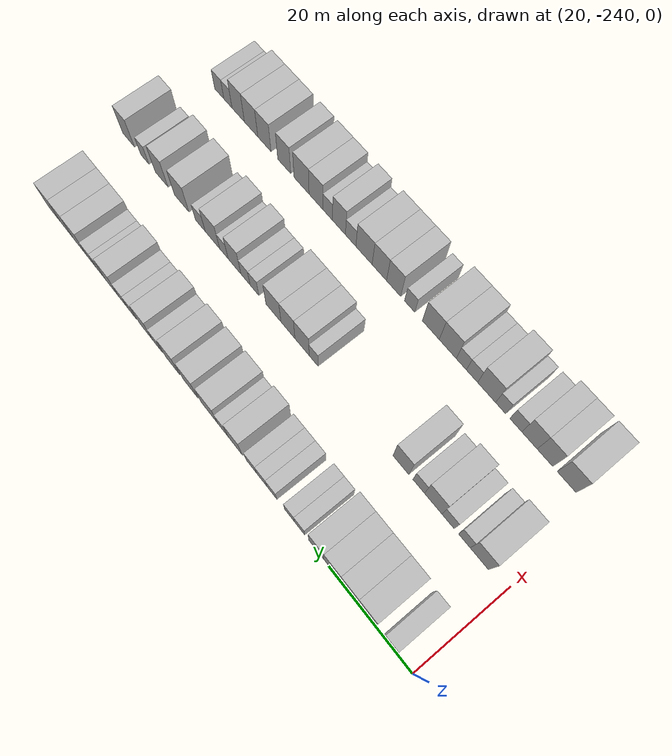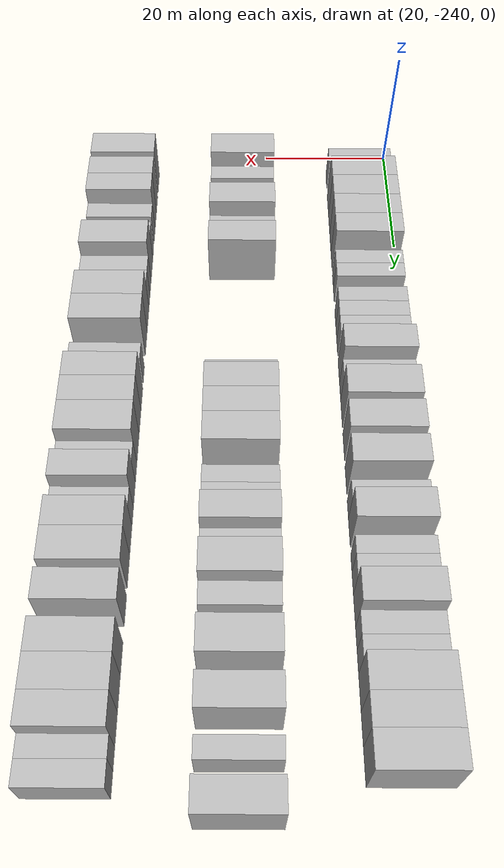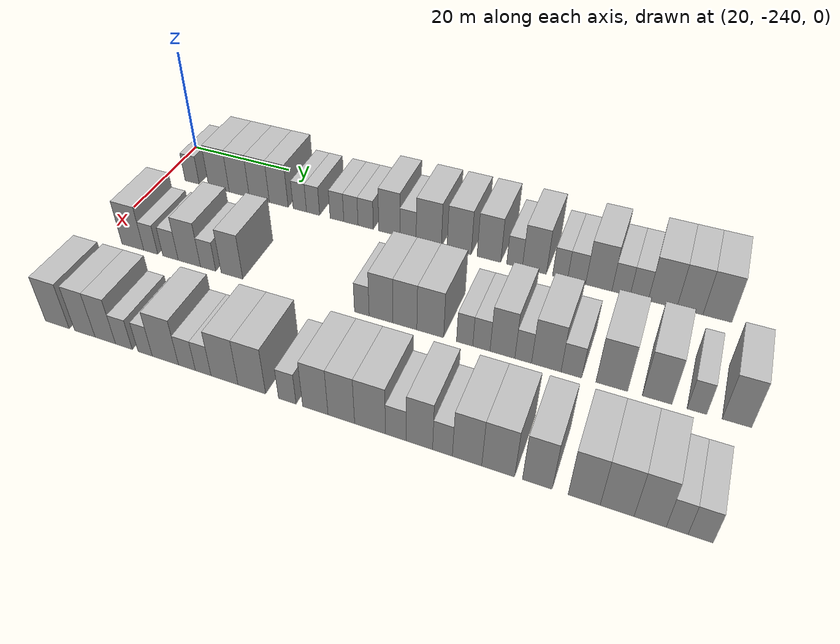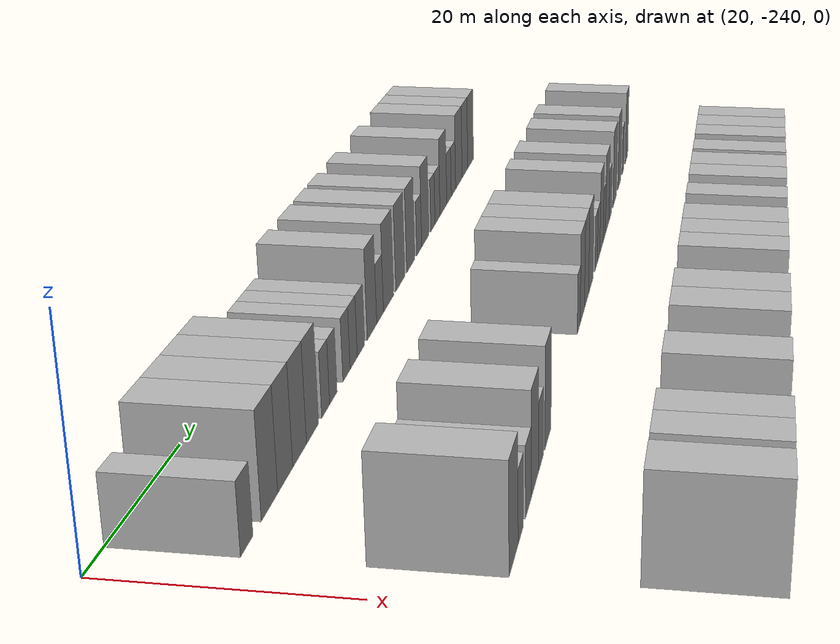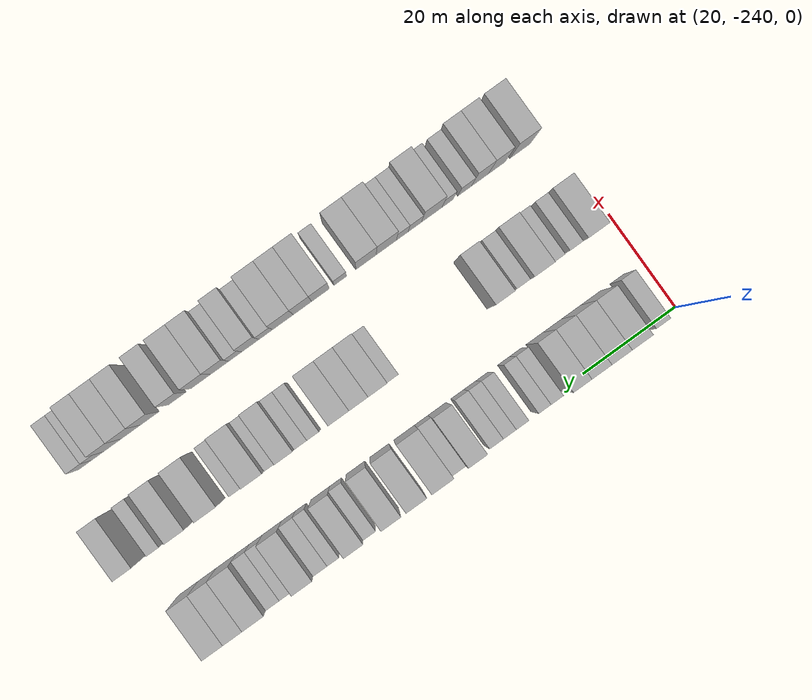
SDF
<sdf version="1.6">
 <world name="default">
  <model name="building_1">
   <static>1</static>
   <pose>25.0000 -234.5110 0 0.000000 0.000000 0.000000</pose>
   <link name="link">
    <pose>0 0 3.00 0 0 0</pose>
    <collision name="collision"><geometry><box><size>10.0000 2.9780 6.0000</size></box></geometry></collision>
    <visual name="visual">
     <cast_shadows>0</cast_shadows>
     <geometry><box><size>10.0000 2.9780 6.0000</size></box></geometry>
     <material>
      <script>
       <uri>model://HANNAS_wall/materials/scripts</uri>
       <uri>model://HANNAS_wall/materials/textures</uri>
       <name>vrc/HANNAS_wall</name>
      </script>
     </material>
    </visual>
   </link>
  </model>
  <model name="building_2">
   <static>1</static>
   <pose>25.0000 -228.8985 0 0.000000 0.000000 0.000000</pose>
   <link name="link">
    <pose>0 0 4.50 0 0 0</pose>
    <collision name="collision"><geometry><box><size>10.0000 4.2470 9.0000</size></box></geometry></collision>
    <visual name="visual">
     <cast_shadows>0</cast_shadows>
     <geometry><box><size>10.0000 4.2470 9.0000</size></box></geometry>
     <material>
      <script>
       <uri>model://HANNAS_wall/materials/scripts</uri>
       <uri>model://HANNAS_wall/materials/textures</uri>
       <name>vrc/HANNAS_wall</name>
      </script>
     </material>
    </visual>
   </link>
  </model>
  <model name="building_3">
   <static>1</static>
   <pose>25.0000 -224.7222 0 0.000000 0.000000 0.000000</pose>
   <link name="link">
    <pose>0 0 4.50 0 0 0</pose>
    <collision name="collision"><geometry><box><size>10.0000 4.1056 9.0000</size></box></geometry></collision>
    <visual name="visual">
     <cast_shadows>0</cast_shadows>
     <geometry><box><size>10.0000 4.1056 9.0000</size></box></geometry>
     <material>
      <script>
       <uri>model://HANNAS_wall/materials/scripts</uri>
       <uri>model://HANNAS_wall/materials/textures</uri>
       <name>vrc/HANNAS_wall</name>
      </script>
     </material>
    </visual>
   </link>
  </model>
  <model name="building_4">
   <static>1</static>
   <pose>25.0000 -220.6617 0 0.000000 0.000000 0.000000</pose>
   <link name="link">
    <pose>0 0 4.50 0 0 0</pose>
    <collision name="collision"><geometry><box><size>10.0000 4.0155 9.0000</size></box></geometry></collision>
    <visual name="visual">
     <cast_shadows>0</cast_shadows>
     <geometry><box><size>10.0000 4.0155 9.0000</size></box></geometry>
     <material>
      <script>
       <uri>model://HANNAS_wall/materials/scripts</uri>
       <uri>model://HANNAS_wall/materials/textures</uri>
       <name>vrc/HANNAS_wall</name>
      </script>
     </material>
    </visual>
   </link>
  </model>
  <model name="building_5">
   <static>1</static>
   <pose>25.0000 -216.7929 0 0.000000 0.000000 0.000000</pose>
   <link name="link">
    <pose>0 0 4.50 0 0 0</pose>
    <collision name="collision"><geometry><box><size>10.0000 3.7220 9.0000</size></box></geometry></collision>
    <visual name="visual">
     <cast_shadows>0</cast_shadows>
     <geometry><box><size>10.0000 3.7220 9.0000</size></box></geometry>
     <material>
      <script>
       <uri>model://HANNAS_wall/materials/scripts</uri>
       <uri>model://HANNAS_wall/materials/textures</uri>
       <name>vrc/HANNAS_wall</name>
      </script>
     </material>
    </visual>
   </link>
  </model>
  <model name="building_6">
   <static>1</static>
   <pose>25.0000 -212.6396 0 0.000000 0.000000 0.000000</pose>
   <link name="link">
    <pose>0 0 3.00 0 0 0</pose>
    <collision name="collision"><geometry><box><size>10.0000 2.5845 6.0000</size></box></geometry></collision>
    <visual name="visual">
     <cast_shadows>0</cast_shadows>
     <geometry><box><size>10.0000 2.5845 6.0000</size></box></geometry>
     <material>
      <script>
       <uri>model://HANNAS_wall/materials/scripts</uri>
       <uri>model://HANNAS_wall/materials/textures</uri>
       <name>vrc/HANNAS_wall</name>
      </script>
     </material>
    </visual>
   </link>
  </model>
  <model name="building_7">
   <static>1</static>
   <pose>25.0000 -210.0761 0 0.000000 0.000000 0.000000</pose>
   <link name="link">
    <pose>0 0 3.00 0 0 0</pose>
    <collision name="collision"><geometry><box><size>10.0000 2.5425 6.0000</size></box></geometry></collision>
    <visual name="visual">
     <cast_shadows>0</cast_shadows>
     <geometry><box><size>10.0000 2.5425 6.0000</size></box></geometry>
     <material>
      <script>
       <uri>model://HANNAS_wall/materials/scripts</uri>
       <uri>model://HANNAS_wall/materials/textures</uri>
       <name>vrc/HANNAS_wall</name>
      </script>
     </material>
    </visual>
   </link>
  </model>
  <model name="building_8">
   <static>1</static>
   <pose>25.0000 -205.5048 0 0.000000 0.000000 0.000000</pose>
   <link name="link">
    <pose>0 0 3.00 0 0 0</pose>
    <collision name="collision"><geometry><box><size>10.0000 2.6002 6.0000</size></box></geometry></collision>
    <visual name="visual">
     <cast_shadows>0</cast_shadows>
     <geometry><box><size>10.0000 2.6002 6.0000</size></box></geometry>
     <material>
      <script>
       <uri>model://HANNAS_wall/materials/scripts</uri>
       <uri>model://HANNAS_wall/materials/textures</uri>
       <name>vrc/HANNAS_wall</name>
      </script>
     </material>
    </visual>
   </link>
  </model>
  <model name="building_9">
   <static>1</static>
   <pose>25.0000 -202.8734 0 0.000000 0.000000 0.000000</pose>
   <link name="link">
    <pose>0 0 3.00 0 0 0</pose>
    <collision name="collision"><geometry><box><size>10.0000 2.6625 6.0000</size></box></geometry></collision>
    <visual name="visual">
     <cast_shadows>0</cast_shadows>
     <geometry><box><size>10.0000 2.6625 6.0000</size></box></geometry>
     <material>
      <script>
       <uri>model://HANNAS_wall/materials/scripts</uri>
       <uri>model://HANNAS_wall/materials/textures</uri>
       <name>vrc/HANNAS_wall</name>
      </script>
     </material>
    </visual>
   </link>
  </model>
  <model name="building_10">
   <static>1</static>
   <pose>25.0000 -200.1235 0 0.000000 0.000000 0.000000</pose>
   <link name="link">
    <pose>0 0 3.00 0 0 0</pose>
    <collision name="collision"><geometry><box><size>10.0000 2.8374 6.0000</size></box></geometry></collision>
    <visual name="visual">
     <cast_shadows>0</cast_shadows>
     <geometry><box><size>10.0000 2.8374 6.0000</size></box></geometry>
     <material>
      <script>
       <uri>model://HANNAS_wall/materials/scripts</uri>
       <uri>model://HANNAS_wall/materials/textures</uri>
       <name>vrc/HANNAS_wall</name>
      </script>
     </material>
    </visual>
   </link>
  </model>
  <model name="building_11">
   <static>1</static>
   <pose>25.0000 -195.7681 0 0.000000 0.000000 0.000000</pose>
   <link name="link">
    <pose>0 0 4.50 0 0 0</pose>
    <collision name="collision"><geometry><box><size>10.0000 3.8734 9.0000</size></box></geometry></collision>
    <visual name="visual">
     <cast_shadows>0</cast_shadows>
     <geometry><box><size>10.0000 3.8734 9.0000</size></box></geometry>
     <material>
      <script>
       <uri>model://HANNAS_wall/materials/scripts</uri>
       <uri>model://HANNAS_wall/materials/textures</uri>
       <name>vrc/HANNAS_wall</name>
      </script>
     </material>
    </visual>
   </link>
  </model>
  <model name="building_12">
   <static>1</static>
   <pose>25.0000 -192.3877 0 0.000000 0.000000 0.000000</pose>
   <link name="link">
    <pose>0 0 3.00 0 0 0</pose>
    <collision name="collision"><geometry><box><size>10.0000 2.8874 6.0000</size></box></geometry></collision>
    <visual name="visual">
     <cast_shadows>0</cast_shadows>
     <geometry><box><size>10.0000 2.8874 6.0000</size></box></geometry>
     <material>
      <script>
       <uri>model://HANNAS_wall/materials/scripts</uri>
       <uri>model://HANNAS_wall/materials/textures</uri>
       <name>vrc/HANNAS_wall</name>
      </script>
     </material>
    </visual>
   </link>
  </model>
  <model name="building_13">
   <static>1</static>
   <pose>25.0000 -188.7021 0 0.000000 0.000000 0.000000</pose>
   <link name="link">
    <pose>0 0 4.50 0 0 0</pose>
    <collision name="collision"><geometry><box><size>10.0000 4.4838 9.0000</size></box></geometry></collision>
    <visual name="visual">
     <cast_shadows>0</cast_shadows>
     <geometry><box><size>10.0000 4.4838 9.0000</size></box></geometry>
     <material>
      <script>
       <uri>model://HANNAS_wall/materials/scripts</uri>
       <uri>model://HANNAS_wall/materials/textures</uri>
       <name>vrc/HANNAS_wall</name>
      </script>
     </material>
    </visual>
   </link>
  </model>
  <model name="building_14">
   <static>1</static>
   <pose>25.0000 -183.3617 0 0.000000 0.000000 0.000000</pose>
   <link name="link">
    <pose>0 0 4.50 0 0 0</pose>
    <collision name="collision"><geometry><box><size>10.0000 4.1970 9.0000</size></box></geometry></collision>
    <visual name="visual">
     <cast_shadows>0</cast_shadows>
     <geometry><box><size>10.0000 4.1970 9.0000</size></box></geometry>
     <material>
      <script>
       <uri>model://HANNAS_wall/materials/scripts</uri>
       <uri>model://HANNAS_wall/materials/textures</uri>
       <name>vrc/HANNAS_wall</name>
      </script>
     </material>
    </visual>
   </link>
  </model>
  <model name="building_15">
   <static>1</static>
   <pose>25.0000 -178.2500 0 0.000000 0.000000 0.000000</pose>
   <link name="link">
    <pose>0 0 4.50 0 0 0</pose>
    <collision name="collision"><geometry><box><size>10.0000 4.0265 9.0000</size></box></geometry></collision>
    <visual name="visual">
     <cast_shadows>0</cast_shadows>
     <geometry><box><size>10.0000 4.0265 9.0000</size></box></geometry>
     <material>
      <script>
       <uri>model://HANNAS_wall/materials/scripts</uri>
       <uri>model://HANNAS_wall/materials/textures</uri>
       <name>vrc/HANNAS_wall</name>
      </script>
     </material>
    </visual>
   </link>
  </model>
  <model name="building_16">
   <static>1</static>
   <pose>25.0000 -173.9341 0 0.000000 0.000000 0.000000</pose>
   <link name="link">
    <pose>0 0 3.00 0 0 0</pose>
    <collision name="collision"><geometry><box><size>10.0000 2.6052 6.0000</size></box></geometry></collision>
    <visual name="visual">
     <cast_shadows>0</cast_shadows>
     <geometry><box><size>10.0000 2.6052 6.0000</size></box></geometry>
     <material>
      <script>
       <uri>model://HANNAS_wall/materials/scripts</uri>
       <uri>model://HANNAS_wall/materials/textures</uri>
       <name>vrc/HANNAS_wall</name>
      </script>
     </material>
    </visual>
   </link>
  </model>
  <model name="building_17">
   <static>1</static>
   <pose>25.0000 -170.6508 0 0.000000 0.000000 0.000000</pose>
   <link name="link">
    <pose>0 0 4.50 0 0 0</pose>
    <collision name="collision"><geometry><box><size>10.0000 3.9614 9.0000</size></box></geometry></collision>
    <visual name="visual">
     <cast_shadows>0</cast_shadows>
     <geometry><box><size>10.0000 3.9614 9.0000</size></box></geometry>
     <material>
      <script>
       <uri>model://HANNAS_wall/materials/scripts</uri>
       <uri>model://HANNAS_wall/materials/textures</uri>
       <name>vrc/HANNAS_wall</name>
      </script>
     </material>
    </visual>
   </link>
  </model>
  <model name="building_18">
   <static>1</static>
   <pose>25.0000 -166.4520 0 0.000000 0.000000 0.000000</pose>
   <link name="link">
    <pose>0 0 3.00 0 0 0</pose>
    <collision name="collision"><geometry><box><size>10.0000 2.4362 6.0000</size></box></geometry></collision>
    <visual name="visual">
     <cast_shadows>0</cast_shadows>
     <geometry><box><size>10.0000 2.4362 6.0000</size></box></geometry>
     <material>
      <script>
       <uri>model://HANNAS_wall/materials/scripts</uri>
       <uri>model://HANNAS_wall/materials/textures</uri>
       <name>vrc/HANNAS_wall</name>
      </script>
     </material>
    </visual>
   </link>
  </model>
  <model name="building_19">
   <static>1</static>
   <pose>25.0000 -163.7899 0 0.000000 0.000000 0.000000</pose>
   <link name="link">
    <pose>0 0 3.00 0 0 0</pose>
    <collision name="collision"><geometry><box><size>10.0000 2.8879 6.0000</size></box></geometry></collision>
    <visual name="visual">
     <cast_shadows>0</cast_shadows>
     <geometry><box><size>10.0000 2.8879 6.0000</size></box></geometry>
     <material>
      <script>
       <uri>model://HANNAS_wall/materials/scripts</uri>
       <uri>model://HANNAS_wall/materials/textures</uri>
       <name>vrc/HANNAS_wall</name>
      </script>
     </material>
    </visual>
   </link>
  </model>
  <model name="building_20">
   <static>1</static>
   <pose>25.0000 -160.2776 0 0.000000 0.000000 0.000000</pose>
   <link name="link">
    <pose>0 0 4.50 0 0 0</pose>
    <collision name="collision"><geometry><box><size>10.0000 4.1365 9.0000</size></box></geometry></collision>
    <visual name="visual">
     <cast_shadows>0</cast_shadows>
     <geometry><box><size>10.0000 4.1365 9.0000</size></box></geometry>
     <material>
      <script>
       <uri>model://HANNAS_wall/materials/scripts</uri>
       <uri>model://HANNAS_wall/materials/textures</uri>
       <name>vrc/HANNAS_wall</name>
      </script>
     </material>
    </visual>
   </link>
  </model>
  <model name="building_21">
   <static>1</static>
   <pose>25.0000 -156.7975 0 0.000000 0.000000 0.000000</pose>
   <link name="link">
    <pose>0 0 3.00 0 0 0</pose>
    <collision name="collision"><geometry><box><size>10.0000 2.8238 6.0000</size></box></geometry></collision>
    <visual name="visual">
     <cast_shadows>0</cast_shadows>
     <geometry><box><size>10.0000 2.8238 6.0000</size></box></geometry>
     <material>
      <script>
       <uri>model://HANNAS_wall/materials/scripts</uri>
       <uri>model://HANNAS_wall/materials/textures</uri>
       <name>vrc/HANNAS_wall</name>
      </script>
     </material>
    </visual>
   </link>
  </model>
  <model name="building_22">
   <static>1</static>
   <pose>25.0000 -153.9913 0 0.000000 0.000000 0.000000</pose>
   <link name="link">
    <pose>0 0 3.00 0 0 0</pose>
    <collision name="collision"><geometry><box><size>10.0000 2.7885 6.0000</size></box></geometry></collision>
    <visual name="visual">
     <cast_shadows>0</cast_shadows>
     <geometry><box><size>10.0000 2.7885 6.0000</size></box></geometry>
     <material>
      <script>
       <uri>model://HANNAS_wall/materials/scripts</uri>
       <uri>model://HANNAS_wall/materials/textures</uri>
       <name>vrc/HANNAS_wall</name>
      </script>
     </material>
    </visual>
   </link>
  </model>
  <model name="building_23">
   <static>1</static>
   <pose>25.0000 -150.4368 0 0.000000 0.000000 0.000000</pose>
   <link name="link">
    <pose>0 0 4.50 0 0 0</pose>
    <collision name="collision"><geometry><box><size>10.0000 4.3205 9.0000</size></box></geometry></collision>
    <visual name="visual">
     <cast_shadows>0</cast_shadows>
     <geometry><box><size>10.0000 4.3205 9.0000</size></box></geometry>
     <material>
      <script>
       <uri>model://HANNAS_wall/materials/scripts</uri>
       <uri>model://HANNAS_wall/materials/textures</uri>
       <name>vrc/HANNAS_wall</name>
      </script>
     </material>
    </visual>
   </link>
  </model>
  <model name="building_24">
   <static>1</static>
   <pose>25.0000 -146.3372 0 0.000000 0.000000 0.000000</pose>
   <link name="link">
    <pose>0 0 4.50 0 0 0</pose>
    <collision name="collision"><geometry><box><size>10.0000 3.8786 9.0000</size></box></geometry></collision>
    <visual name="visual">
     <cast_shadows>0</cast_shadows>
     <geometry><box><size>10.0000 3.8786 9.0000</size></box></geometry>
     <material>
      <script>
       <uri>model://HANNAS_wall/materials/scripts</uri>
       <uri>model://HANNAS_wall/materials/textures</uri>
       <name>vrc/HANNAS_wall</name>
      </script>
     </material>
    </visual>
   </link>
  </model>
  <model name="building_25">
   <static>1</static>
   <pose>25.0000 -142.2803 0 0.000000 0.000000 0.000000</pose>
   <link name="link">
    <pose>0 0 4.50 0 0 0</pose>
    <collision name="collision"><geometry><box><size>10.0000 4.2353 9.0000</size></box></geometry></collision>
    <visual name="visual">
     <cast_shadows>0</cast_shadows>
     <geometry><box><size>10.0000 4.2353 9.0000</size></box></geometry>
     <material>
      <script>
       <uri>model://HANNAS_wall/materials/scripts</uri>
       <uri>model://HANNAS_wall/materials/textures</uri>
       <name>vrc/HANNAS_wall</name>
      </script>
     </material>
    </visual>
   </link>
  </model>
  <model name="building_117">
   <static>1</static>
   <pose>44.0000 -233.8512 0 0.000000 0.000000 0.000000</pose>
   <link name="link">
    <pose>0 0 4.50 0 0 0</pose>
    <collision name="collision"><geometry><box><size>10.0000 4.2975 9.0000</size></box></geometry></collision>
    <visual name="visual">
     <cast_shadows>0</cast_shadows>
     <geometry><box><size>10.0000 4.2975 9.0000</size></box></geometry>
     <material>
      <script>
       <uri>model://HANNAS_wall/materials/scripts</uri>
       <uri>model://HANNAS_wall/materials/textures</uri>
       <name>vrc/HANNAS_wall</name>
      </script>
     </material>
    </visual>
   </link>
  </model>
  <model name="building_118">
   <static>1</static>
   <pose>44.0000 -230.3471 0 0.000000 0.000000 0.000000</pose>
   <link name="link">
    <pose>0 0 3.00 0 0 0</pose>
    <collision name="collision"><geometry><box><size>10.0000 2.7107 6.0000</size></box></geometry></collision>
    <visual name="visual">
     <cast_shadows>0</cast_shadows>
     <geometry><box><size>10.0000 2.7107 6.0000</size></box></geometry>
     <material>
      <script>
       <uri>model://HANNAS_wall/materials/scripts</uri>
       <uri>model://HANNAS_wall/materials/textures</uri>
       <name>vrc/HANNAS_wall</name>
      </script>
     </material>
    </visual>
   </link>
  </model>
  <model name="building_119">
   <static>1</static>
   <pose>44.0000 -226.5176 0 0.000000 0.000000 0.000000</pose>
   <link name="link">
    <pose>0 0 3.00 0 0 0</pose>
    <collision name="collision"><geometry><box><size>10.0000 2.9483 6.0000</size></box></geometry></collision>
    <visual name="visual">
     <cast_shadows>0</cast_shadows>
     <geometry><box><size>10.0000 2.9483 6.0000</size></box></geometry>
     <material>
      <script>
       <uri>model://HANNAS_wall/materials/scripts</uri>
       <uri>model://HANNAS_wall/materials/textures</uri>
       <name>vrc/HANNAS_wall</name>
      </script>
     </material>
    </visual>
   </link>
  </model>
  <model name="building_120">
   <static>1</static>
   <pose>44.0000 -222.9465 0 0.000000 0.000000 0.000000</pose>
   <link name="link">
    <pose>0 0 4.50 0 0 0</pose>
    <collision name="collision"><geometry><box><size>10.0000 4.1940 9.0000</size></box></geometry></collision>
    <visual name="visual">
     <cast_shadows>0</cast_shadows>
     <geometry><box><size>10.0000 4.1940 9.0000</size></box></geometry>
     <material>
      <script>
       <uri>model://HANNAS_wall/materials/scripts</uri>
       <uri>model://HANNAS_wall/materials/textures</uri>
       <name>vrc/HANNAS_wall</name>
      </script>
     </material>
    </visual>
   </link>
  </model>
  <model name="building_121">
   <static>1</static>
   <pose>44.0000 -219.4263 0 0.000000 0.000000 0.000000</pose>
   <link name="link">
    <pose>0 0 3.00 0 0 0</pose>
    <collision name="collision"><geometry><box><size>10.0000 2.8464 6.0000</size></box></geometry></collision>
    <visual name="visual">
     <cast_shadows>0</cast_shadows>
     <geometry><box><size>10.0000 2.8464 6.0000</size></box></geometry>
     <material>
      <script>
       <uri>model://HANNAS_wall/materials/scripts</uri>
       <uri>model://HANNAS_wall/materials/textures</uri>
       <name>vrc/HANNAS_wall</name>
      </script>
     </material>
    </visual>
   </link>
  </model>
  <model name="building_122">
   <static>1</static>
   <pose>44.0000 -215.0389 0 0.000000 0.000000 0.000000</pose>
   <link name="link">
    <pose>0 0 4.50 0 0 0</pose>
    <collision name="collision"><geometry><box><size>10.0000 3.9283 9.0000</size></box></geometry></collision>
    <visual name="visual">
     <cast_shadows>0</cast_shadows>
     <geometry><box><size>10.0000 3.9283 9.0000</size></box></geometry>
     <material>
      <script>
       <uri>model://HANNAS_wall/materials/scripts</uri>
       <uri>model://HANNAS_wall/materials/textures</uri>
       <name>vrc/HANNAS_wall</name>
      </script>
     </material>
    </visual>
   </link>
  </model>
  <model name="building_123">
   <static>1</static>
   <pose>44.0000 -192.4427 0 0.000000 0.000000 0.000000</pose>
   <link name="link">
    <pose>0 0 3.00 0 0 0</pose>
    <collision name="collision"><geometry><box><size>10.0000 2.4214 6.0000</size></box></geometry></collision>
    <visual name="visual">
     <cast_shadows>0</cast_shadows>
     <geometry><box><size>10.0000 2.4214 6.0000</size></box></geometry>
     <material>
      <script>
       <uri>model://HANNAS_wall/materials/scripts</uri>
       <uri>model://HANNAS_wall/materials/textures</uri>
       <name>vrc/HANNAS_wall</name>
      </script>
     </material>
    </visual>
   </link>
  </model>
  <model name="building_124">
   <static>1</static>
   <pose>44.0000 -189.2948 0 0.000000 0.000000 0.000000</pose>
   <link name="link">
    <pose>0 0 4.50 0 0 0</pose>
    <collision name="collision"><geometry><box><size>10.0000 3.8745 9.0000</size></box></geometry></collision>
    <visual name="visual">
     <cast_shadows>0</cast_shadows>
     <geometry><box><size>10.0000 3.8745 9.0000</size></box></geometry>
     <material>
      <script>
       <uri>model://HANNAS_wall/materials/scripts</uri>
       <uri>model://HANNAS_wall/materials/textures</uri>
       <name>vrc/HANNAS_wall</name>
      </script>
     </material>
    </visual>
   </link>
  </model>
  <model name="building_125">
   <static>1</static>
   <pose>44.0000 -185.4379 0 0.000000 0.000000 0.000000</pose>
   <link name="link">
    <pose>0 0 4.50 0 0 0</pose>
    <collision name="collision"><geometry><box><size>10.0000 3.8393 9.0000</size></box></geometry></collision>
    <visual name="visual">
     <cast_shadows>0</cast_shadows>
     <geometry><box><size>10.0000 3.8393 9.0000</size></box></geometry>
     <material>
      <script>
       <uri>model://HANNAS_wall/materials/scripts</uri>
       <uri>model://HANNAS_wall/materials/textures</uri>
       <name>vrc/HANNAS_wall</name>
      </script>
     </material>
    </visual>
   </link>
  </model>
  <model name="building_126">
   <static>1</static>
   <pose>44.0000 -181.4023 0 0.000000 0.000000 0.000000</pose>
   <link name="link">
    <pose>0 0 4.50 0 0 0</pose>
    <collision name="collision"><geometry><box><size>10.0000 4.2319 9.0000</size></box></geometry></collision>
    <visual name="visual">
     <cast_shadows>0</cast_shadows>
     <geometry><box><size>10.0000 4.2319 9.0000</size></box></geometry>
     <material>
      <script>
       <uri>model://HANNAS_wall/materials/scripts</uri>
       <uri>model://HANNAS_wall/materials/textures</uri>
       <name>vrc/HANNAS_wall</name>
      </script>
     </material>
    </visual>
   </link>
  </model>
  <model name="building_127">
   <static>1</static>
   <pose>44.0000 -176.0356 0 0.000000 0.000000 0.000000</pose>
   <link name="link">
    <pose>0 0 3.00 0 0 0</pose>
    <collision name="collision"><geometry><box><size>10.0000 2.5014 6.0000</size></box></geometry></collision>
    <visual name="visual">
     <cast_shadows>0</cast_shadows>
     <geometry><box><size>10.0000 2.5014 6.0000</size></box></geometry>
     <material>
      <script>
       <uri>model://HANNAS_wall/materials/scripts</uri>
       <uri>model://HANNAS_wall/materials/textures</uri>
       <name>vrc/HANNAS_wall</name>
      </script>
     </material>
    </visual>
   </link>
  </model>
  <model name="building_128">
   <static>1</static>
   <pose>44.0000 -173.4767 0 0.000000 0.000000 0.000000</pose>
   <link name="link">
    <pose>0 0 3.00 0 0 0</pose>
    <collision name="collision"><geometry><box><size>10.0000 2.6164 6.0000</size></box></geometry></collision>
    <visual name="visual">
     <cast_shadows>0</cast_shadows>
     <geometry><box><size>10.0000 2.6164 6.0000</size></box></geometry>
     <material>
      <script>
       <uri>model://HANNAS_wall/materials/scripts</uri>
       <uri>model://HANNAS_wall/materials/textures</uri>
       <name>vrc/HANNAS_wall</name>
      </script>
     </material>
    </visual>
   </link>
  </model>
  <model name="building_129">
   <static>1</static>
   <pose>44.0000 -170.3108 0 0.000000 0.000000 0.000000</pose>
   <link name="link">
    <pose>0 0 4.50 0 0 0</pose>
    <collision name="collision"><geometry><box><size>10.0000 3.7154 9.0000</size></box></geometry></collision>
    <visual name="visual">
     <cast_shadows>0</cast_shadows>
     <geometry><box><size>10.0000 3.7154 9.0000</size></box></geometry>
     <material>
      <script>
       <uri>model://HANNAS_wall/materials/scripts</uri>
       <uri>model://HANNAS_wall/materials/textures</uri>
       <name>vrc/HANNAS_wall</name>
      </script>
     </material>
    </visual>
   </link>
  </model>
  <model name="building_130">
   <static>1</static>
   <pose>44.0000 -167.2194 0 0.000000 0.000000 0.000000</pose>
   <link name="link">
    <pose>0 0 3.00 0 0 0</pose>
    <collision name="collision"><geometry><box><size>10.0000 2.4674 6.0000</size></box></geometry></collision>
    <visual name="visual">
     <cast_shadows>0</cast_shadows>
     <geometry><box><size>10.0000 2.4674 6.0000</size></box></geometry>
     <material>
      <script>
       <uri>model://HANNAS_wall/materials/scripts</uri>
       <uri>model://HANNAS_wall/materials/textures</uri>
       <name>vrc/HANNAS_wall</name>
      </script>
     </material>
    </visual>
   </link>
  </model>
  <model name="building_131">
   <static>1</static>
   <pose>44.0000 -163.8393 0 0.000000 0.000000 0.000000</pose>
   <link name="link">
    <pose>0 0 4.50 0 0 0</pose>
    <collision name="collision"><geometry><box><size>10.0000 4.2929 9.0000</size></box></geometry></collision>
    <visual name="visual">
     <cast_shadows>0</cast_shadows>
     <geometry><box><size>10.0000 4.2929 9.0000</size></box></geometry>
     <material>
      <script>
       <uri>model://HANNAS_wall/materials/scripts</uri>
       <uri>model://HANNAS_wall/materials/textures</uri>
       <name>vrc/HANNAS_wall</name>
      </script>
     </material>
    </visual>
   </link>
  </model>
  <model name="building_132">
   <static>1</static>
   <pose>44.0000 -160.2126 0 0.000000 0.000000 0.000000</pose>
   <link name="link">
    <pose>0 0 3.00 0 0 0</pose>
    <collision name="collision"><geometry><box><size>10.0000 2.9605 6.0000</size></box></geometry></collision>
    <visual name="visual">
     <cast_shadows>0</cast_shadows>
     <geometry><box><size>10.0000 2.9605 6.0000</size></box></geometry>
     <material>
      <script>
       <uri>model://HANNAS_wall/materials/scripts</uri>
       <uri>model://HANNAS_wall/materials/textures</uri>
       <name>vrc/HANNAS_wall</name>
      </script>
     </material>
    </visual>
   </link>
  </model>
  <model name="building_133">
   <static>1</static>
   <pose>44.0000 -154.5204 0 0.000000 0.000000 0.000000</pose>
   <link name="link">
    <pose>0 0 4.50 0 0 0</pose>
    <collision name="collision"><geometry><box><size>10.0000 4.4240 9.0000</size></box></geometry></collision>
    <visual name="visual">
     <cast_shadows>0</cast_shadows>
     <geometry><box><size>10.0000 4.4240 9.0000</size></box></geometry>
     <material>
      <script>
       <uri>model://HANNAS_wall/materials/scripts</uri>
       <uri>model://HANNAS_wall/materials/textures</uri>
       <name>vrc/HANNAS_wall</name>
      </script>
     </material>
    </visual>
   </link>
  </model>
  <model name="building_134">
   <static>1</static>
   <pose>44.0000 -148.2998 0 0.000000 0.000000 0.000000</pose>
   <link name="link">
    <pose>0 0 4.50 0 0 0</pose>
    <collision name="collision"><geometry><box><size>10.0000 4.0170 9.0000</size></box></geometry></collision>
    <visual name="visual">
     <cast_shadows>0</cast_shadows>
     <geometry><box><size>10.0000 4.0170 9.0000</size></box></geometry>
     <material>
      <script>
       <uri>model://HANNAS_wall/materials/scripts</uri>
       <uri>model://HANNAS_wall/materials/textures</uri>
       <name>vrc/HANNAS_wall</name>
      </script>
     </material>
    </visual>
   </link>
  </model>
  <model name="building_135">
   <static>1</static>
   <pose>44.0000 -142.9965 0 0.000000 0.000000 0.000000</pose>
   <link name="link">
    <pose>0 0 3.00 0 0 0</pose>
    <collision name="collision"><geometry><box><size>10.0000 2.5897 6.0000</size></box></geometry></collision>
    <visual name="visual">
     <cast_shadows>0</cast_shadows>
     <geometry><box><size>10.0000 2.5897 6.0000</size></box></geometry>
     <material>
      <script>
       <uri>model://HANNAS_wall/materials/scripts</uri>
       <uri>model://HANNAS_wall/materials/textures</uri>
       <name>vrc/HANNAS_wall</name>
      </script>
     </material>
    </visual>
   </link>
  </model>
  <model name="building_136">
   <static>1</static>
   <pose>44.0000 -137.8077 0 0.000000 0.000000 0.000000</pose>
   <link name="link">
    <pose>0 0 4.50 0 0 0</pose>
    <collision name="collision"><geometry><box><size>10.0000 3.7879 9.0000</size></box></geometry></collision>
    <visual name="visual">
     <cast_shadows>0</cast_shadows>
     <geometry><box><size>10.0000 3.7879 9.0000</size></box></geometry>
     <material>
      <script>
       <uri>model://HANNAS_wall/materials/scripts</uri>
       <uri>model://HANNAS_wall/materials/textures</uri>
       <name>vrc/HANNAS_wall</name>
      </script>
     </material>
    </visual>
   </link>
  </model>
  <model name="building_233">
   <static>1</static>
   <pose>63.0000 -233.8244 0 0.000000 0.000000 0.000000</pose>
   <link name="link">
    <pose>0 0 4.50 0 0 0</pose>
    <collision name="collision"><geometry><box><size>10.0000 4.3513 9.0000</size></box></geometry></collision>
    <visual name="visual">
     <cast_shadows>0</cast_shadows>
     <geometry><box><size>10.0000 4.3513 9.0000</size></box></geometry>
     <material>
      <script>
       <uri>model://HANNAS_wall/materials/scripts</uri>
       <uri>model://HANNAS_wall/materials/textures</uri>
       <name>vrc/HANNAS_wall</name>
      </script>
     </material>
    </visual>
   </link>
  </model>
  <model name="building_234">
   <static>1</static>
   <pose>63.0000 -228.8099 0 0.000000 0.000000 0.000000</pose>
   <link name="link">
    <pose>0 0 4.50 0 0 0</pose>
    <collision name="collision"><geometry><box><size>10.0000 3.6776 9.0000</size></box></geometry></collision>
    <visual name="visual">
     <cast_shadows>0</cast_shadows>
     <geometry><box><size>10.0000 3.6776 9.0000</size></box></geometry>
     <material>
      <script>
       <uri>model://HANNAS_wall/materials/scripts</uri>
       <uri>model://HANNAS_wall/materials/textures</uri>
       <name>vrc/HANNAS_wall</name>
      </script>
     </material>
    </visual>
   </link>
  </model>
  <model name="building_235">
   <static>1</static>
   <pose>63.0000 -225.1608 0 0.000000 0.000000 0.000000</pose>
   <link name="link">
    <pose>0 0 4.50 0 0 0</pose>
    <collision name="collision"><geometry><box><size>10.0000 3.6207 9.0000</size></box></geometry></collision>
    <visual name="visual">
     <cast_shadows>0</cast_shadows>
     <geometry><box><size>10.0000 3.6207 9.0000</size></box></geometry>
     <material>
      <script>
       <uri>model://HANNAS_wall/materials/scripts</uri>
       <uri>model://HANNAS_wall/materials/textures</uri>
       <name>vrc/HANNAS_wall</name>
      </script>
     </material>
    </visual>
   </link>
  </model>
  <model name="building_236">
   <static>1</static>
   <pose>63.0000 -221.8966 0 0.000000 0.000000 0.000000</pose>
   <link name="link">
    <pose>0 0 3.00 0 0 0</pose>
    <collision name="collision"><geometry><box><size>10.0000 2.9077 6.0000</size></box></geometry></collision>
    <visual name="visual">
     <cast_shadows>0</cast_shadows>
     <geometry><box><size>10.0000 2.9077 6.0000</size></box></geometry>
     <material>
      <script>
       <uri>model://HANNAS_wall/materials/scripts</uri>
       <uri>model://HANNAS_wall/materials/textures</uri>
       <name>vrc/HANNAS_wall</name>
      </script>
     </material>
    </visual>
   </link>
  </model>
  <model name="building_237">
   <static>1</static>
   <pose>63.0000 -218.2198 0 0.000000 0.000000 0.000000</pose>
   <link name="link">
    <pose>0 0 3.00 0 0 0</pose>
    <collision name="collision"><geometry><box><size>10.0000 2.4458 6.0000</size></box></geometry></collision>
    <visual name="visual">
     <cast_shadows>0</cast_shadows>
     <geometry><box><size>10.0000 2.4458 6.0000</size></box></geometry>
     <material>
      <script>
       <uri>model://HANNAS_wall/materials/scripts</uri>
       <uri>model://HANNAS_wall/materials/textures</uri>
       <name>vrc/HANNAS_wall</name>
      </script>
     </material>
    </visual>
   </link>
  </model>
  <model name="building_238">
   <static>1</static>
   <pose>63.0000 -214.7890 0 0.000000 0.000000 0.000000</pose>
   <link name="link">
    <pose>0 0 4.50 0 0 0</pose>
    <collision name="collision"><geometry><box><size>10.0000 4.4158 9.0000</size></box></geometry></collision>
    <visual name="visual">
     <cast_shadows>0</cast_shadows>
     <geometry><box><size>10.0000 4.4158 9.0000</size></box></geometry>
     <material>
      <script>
       <uri>model://HANNAS_wall/materials/scripts</uri>
       <uri>model://HANNAS_wall/materials/textures</uri>
       <name>vrc/HANNAS_wall</name>
      </script>
     </material>
    </visual>
   </link>
  </model>
  <model name="building_239">
   <static>1</static>
   <pose>63.0000 -211.1784 0 0.000000 0.000000 0.000000</pose>
   <link name="link">
    <pose>0 0 3.00 0 0 0</pose>
    <collision name="collision"><geometry><box><size>10.0000 2.8053 6.0000</size></box></geometry></collision>
    <visual name="visual">
     <cast_shadows>0</cast_shadows>
     <geometry><box><size>10.0000 2.8053 6.0000</size></box></geometry>
     <material>
      <script>
       <uri>model://HANNAS_wall/materials/scripts</uri>
       <uri>model://HANNAS_wall/materials/textures</uri>
       <name>vrc/HANNAS_wall</name>
      </script>
     </material>
    </visual>
   </link>
  </model>
  <model name="building_240">
   <static>1</static>
   <pose>63.0000 -208.4933 0 0.000000 0.000000 0.000000</pose>
   <link name="link">
    <pose>0 0 3.00 0 0 0</pose>
    <collision name="collision"><geometry><box><size>10.0000 2.5649 6.0000</size></box></geometry></collision>
    <visual name="visual">
     <cast_shadows>0</cast_shadows>
     <geometry><box><size>10.0000 2.5649 6.0000</size></box></geometry>
     <material>
      <script>
       <uri>model://HANNAS_wall/materials/scripts</uri>
       <uri>model://HANNAS_wall/materials/textures</uri>
       <name>vrc/HANNAS_wall</name>
      </script>
     </material>
    </visual>
   </link>
  </model>
  <model name="building_241">
   <static>1</static>
   <pose>63.0000 -205.0414 0 0.000000 0.000000 0.000000</pose>
   <link name="link">
    <pose>0 0 4.50 0 0 0</pose>
    <collision name="collision"><geometry><box><size>10.0000 4.3388 9.0000</size></box></geometry></collision>
    <visual name="visual">
     <cast_shadows>0</cast_shadows>
     <geometry><box><size>10.0000 4.3388 9.0000</size></box></geometry>
     <material>
      <script>
       <uri>model://HANNAS_wall/materials/scripts</uri>
       <uri>model://HANNAS_wall/materials/textures</uri>
       <name>vrc/HANNAS_wall</name>
      </script>
     </material>
    </visual>
   </link>
  </model>
  <model name="building_242">
   <static>1</static>
   <pose>63.0000 -200.6962 0 0.000000 0.000000 0.000000</pose>
   <link name="link">
    <pose>0 0 4.50 0 0 0</pose>
    <collision name="collision"><geometry><box><size>10.0000 4.3516 9.0000</size></box></geometry></collision>
    <visual name="visual">
     <cast_shadows>0</cast_shadows>
     <geometry><box><size>10.0000 4.3516 9.0000</size></box></geometry>
     <material>
      <script>
       <uri>model://HANNAS_wall/materials/scripts</uri>
       <uri>model://HANNAS_wall/materials/textures</uri>
       <name>vrc/HANNAS_wall</name>
      </script>
     </material>
    </visual>
   </link>
  </model>
  <model name="building_243">
   <static>1</static>
   <pose>63.0000 -195.1716 0 0.000000 0.000000 0.000000</pose>
   <link name="link">
    <pose>0 0 3.00 0 0 0</pose>
    <collision name="collision"><geometry><box><size>10.0000 2.6978 6.0000</size></box></geometry></collision>
    <visual name="visual">
     <cast_shadows>0</cast_shadows>
     <geometry><box><size>10.0000 2.6978 6.0000</size></box></geometry>
     <material>
      <script>
       <uri>model://HANNAS_wall/materials/scripts</uri>
       <uri>model://HANNAS_wall/materials/textures</uri>
       <name>vrc/HANNAS_wall</name>
      </script>
     </material>
    </visual>
   </link>
  </model>
  <model name="building_244">
   <static>1</static>
   <pose>63.0000 -190.9196 0 0.000000 0.000000 0.000000</pose>
   <link name="link">
    <pose>0 0 4.50 0 0 0</pose>
    <collision name="collision"><geometry><box><size>10.0000 3.8062 9.0000</size></box></geometry></collision>
    <visual name="visual">
     <cast_shadows>0</cast_shadows>
     <geometry><box><size>10.0000 3.8062 9.0000</size></box></geometry>
     <material>
      <script>
       <uri>model://HANNAS_wall/materials/scripts</uri>
       <uri>model://HANNAS_wall/materials/textures</uri>
       <name>vrc/HANNAS_wall</name>
      </script>
     </material>
    </visual>
   </link>
  </model>
  <model name="building_245">
   <static>1</static>
   <pose>63.0000 -187.0552 0 0.000000 0.000000 0.000000</pose>
   <link name="link">
    <pose>0 0 4.50 0 0 0</pose>
    <collision name="collision"><geometry><box><size>10.0000 3.9227 9.0000</size></box></geometry></collision>
    <visual name="visual">
     <cast_shadows>0</cast_shadows>
     <geometry><box><size>10.0000 3.9227 9.0000</size></box></geometry>
     <material>
      <script>
       <uri>model://HANNAS_wall/materials/scripts</uri>
       <uri>model://HANNAS_wall/materials/textures</uri>
       <name>vrc/HANNAS_wall</name>
      </script>
     </material>
    </visual>
   </link>
  </model>
  <model name="building_246">
   <static>1</static>
   <pose>63.0000 -182.8678 0 0.000000 0.000000 0.000000</pose>
   <link name="link">
    <pose>0 0 4.50 0 0 0</pose>
    <collision name="collision"><geometry><box><size>10.0000 4.4520 9.0000</size></box></geometry></collision>
    <visual name="visual">
     <cast_shadows>0</cast_shadows>
     <geometry><box><size>10.0000 4.4520 9.0000</size></box></geometry>
     <material>
      <script>
       <uri>model://HANNAS_wall/materials/scripts</uri>
       <uri>model://HANNAS_wall/materials/textures</uri>
       <name>vrc/HANNAS_wall</name>
      </script>
     </material>
    </visual>
   </link>
  </model>
  <model name="building_247">
   <static>1</static>
   <pose>63.0000 -179.1847 0 0.000000 0.000000 0.000000</pose>
   <link name="link">
    <pose>0 0 3.00 0 0 0</pose>
    <collision name="collision"><geometry><box><size>10.0000 2.9143 6.0000</size></box></geometry></collision>
    <visual name="visual">
     <cast_shadows>0</cast_shadows>
     <geometry><box><size>10.0000 2.9143 6.0000</size></box></geometry>
     <material>
      <script>
       <uri>model://HANNAS_wall/materials/scripts</uri>
       <uri>model://HANNAS_wall/materials/textures</uri>
       <name>vrc/HANNAS_wall</name>
      </script>
     </material>
    </visual>
   </link>
  </model>
  <model name="building_248">
   <static>1</static>
   <pose>63.0000 -175.8839 0 0.000000 0.000000 0.000000</pose>
   <link name="link">
    <pose>0 0 4.50 0 0 0</pose>
    <collision name="collision"><geometry><box><size>10.0000 3.6872 9.0000</size></box></geometry></collision>
    <visual name="visual">
     <cast_shadows>0</cast_shadows>
     <geometry><box><size>10.0000 3.6872 9.0000</size></box></geometry>
     <material>
      <script>
       <uri>model://HANNAS_wall/materials/scripts</uri>
       <uri>model://HANNAS_wall/materials/textures</uri>
       <name>vrc/HANNAS_wall</name>
      </script>
     </material>
    </visual>
   </link>
  </model>
  <model name="building_249">
   <static>1</static>
   <pose>63.0000 -172.6877 0 0.000000 0.000000 0.000000</pose>
   <link name="link">
    <pose>0 0 3.00 0 0 0</pose>
    <collision name="collision"><geometry><box><size>10.0000 2.7053 6.0000</size></box></geometry></collision>
    <visual name="visual">
     <cast_shadows>0</cast_shadows>
     <geometry><box><size>10.0000 2.7053 6.0000</size></box></geometry>
     <material>
      <script>
       <uri>model://HANNAS_wall/materials/scripts</uri>
       <uri>model://HANNAS_wall/materials/textures</uri>
       <name>vrc/HANNAS_wall</name>
      </script>
     </material>
    </visual>
   </link>
  </model>
  <model name="building_250">
   <static>1</static>
   <pose>63.0000 -169.3593 0 0.000000 0.000000 0.000000</pose>
   <link name="link">
    <pose>0 0 4.50 0 0 0</pose>
    <collision name="collision"><geometry><box><size>10.0000 3.9513 9.0000</size></box></geometry></collision>
    <visual name="visual">
     <cast_shadows>0</cast_shadows>
     <geometry><box><size>10.0000 3.9513 9.0000</size></box></geometry>
     <material>
      <script>
       <uri>model://HANNAS_wall/materials/scripts</uri>
       <uri>model://HANNAS_wall/materials/textures</uri>
       <name>vrc/HANNAS_wall</name>
      </script>
     </material>
    </visual>
   </link>
  </model>
  <model name="building_251">
   <static>1</static>
   <pose>63.0000 -165.2107 0 0.000000 0.000000 0.000000</pose>
   <link name="link">
    <pose>0 0 4.50 0 0 0</pose>
    <collision name="collision"><geometry><box><size>10.0000 4.3459 9.0000</size></box></geometry></collision>
    <visual name="visual">
     <cast_shadows>0</cast_shadows>
     <geometry><box><size>10.0000 4.3459 9.0000</size></box></geometry>
     <material>
      <script>
       <uri>model://HANNAS_wall/materials/scripts</uri>
       <uri>model://HANNAS_wall/materials/textures</uri>
       <name>vrc/HANNAS_wall</name>
      </script>
     </material>
    </visual>
   </link>
  </model>
  <model name="building_252">
   <static>1</static>
   <pose>63.0000 -160.1213 0 0.000000 0.000000 0.000000</pose>
   <link name="link">
    <pose>0 0 4.50 0 0 0</pose>
    <collision name="collision"><geometry><box><size>10.0000 3.8329 9.0000</size></box></geometry></collision>
    <visual name="visual">
     <cast_shadows>0</cast_shadows>
     <geometry><box><size>10.0000 3.8329 9.0000</size></box></geometry>
     <material>
      <script>
       <uri>model://HANNAS_wall/materials/scripts</uri>
       <uri>model://HANNAS_wall/materials/textures</uri>
       <name>vrc/HANNAS_wall</name>
      </script>
     </material>
    </visual>
   </link>
  </model>
  <model name="building_253">
   <static>1</static>
   <pose>63.0000 -154.2158 0 0.000000 0.000000 0.000000</pose>
   <link name="link">
    <pose>0 0 4.50 0 0 0</pose>
    <collision name="collision"><geometry><box><size>10.0000 3.9782 9.0000</size></box></geometry></collision>
    <visual name="visual">
     <cast_shadows>0</cast_shadows>
     <geometry><box><size>10.0000 3.9782 9.0000</size></box></geometry>
     <material>
      <script>
       <uri>model://HANNAS_wall/materials/scripts</uri>
       <uri>model://HANNAS_wall/materials/textures</uri>
       <name>vrc/HANNAS_wall</name>
      </script>
     </material>
    </visual>
   </link>
  </model>
  <model name="building_254">
   <static>1</static>
   <pose>63.0000 -150.1661 0 0.000000 0.000000 0.000000</pose>
   <link name="link">
    <pose>0 0 4.50 0 0 0</pose>
    <collision name="collision"><geometry><box><size>10.0000 4.1210 9.0000</size></box></geometry></collision>
    <visual name="visual">
     <cast_shadows>0</cast_shadows>
     <geometry><box><size>10.0000 4.1210 9.0000</size></box></geometry>
     <material>
      <script>
       <uri>model://HANNAS_wall/materials/scripts</uri>
       <uri>model://HANNAS_wall/materials/textures</uri>
       <name>vrc/HANNAS_wall</name>
      </script>
     </material>
    </visual>
   </link>
  </model>
  <model name="building_255">
   <static>1</static>
   <pose>63.0000 -146.1961 0 0.000000 0.000000 0.000000</pose>
   <link name="link">
    <pose>0 0 4.50 0 0 0</pose>
    <collision name="collision"><geometry><box><size>10.0000 3.8189 9.0000</size></box></geometry></collision>
    <visual name="visual">
     <cast_shadows>0</cast_shadows>
     <geometry><box><size>10.0000 3.8189 9.0000</size></box></geometry>
     <material>
      <script>
       <uri>model://HANNAS_wall/materials/scripts</uri>
       <uri>model://HANNAS_wall/materials/textures</uri>
       <name>vrc/HANNAS_wall</name>
      </script>
     </material>
    </visual>
   </link>
  </model>
  <model name="building_256">
   <static>1</static>
   <pose>63.0000 -143.0145 0 0.000000 0.000000 0.000000</pose>
   <link name="link">
    <pose>0 0 3.00 0 0 0</pose>
    <collision name="collision"><geometry><box><size>10.0000 2.5443 6.0000</size></box></geometry></collision>
    <visual name="visual">
     <cast_shadows>0</cast_shadows>
     <geometry><box><size>10.0000 2.5443 6.0000</size></box></geometry>
     <material>
      <script>
       <uri>model://HANNAS_wall/materials/scripts</uri>
       <uri>model://HANNAS_wall/materials/textures</uri>
       <name>vrc/HANNAS_wall</name>
      </script>
     </material>
    </visual>
   </link>
  </model>
  <model name="building_257">
   <static>1</static>
   <pose>63.0000 -140.2894 0 0.000000 0.000000 0.000000</pose>
   <link name="link">
    <pose>0 0 3.00 0 0 0</pose>
    <collision name="collision"><geometry><box><size>10.0000 2.9058 6.0000</size></box></geometry></collision>
    <visual name="visual">
     <cast_shadows>0</cast_shadows>
     <geometry><box><size>10.0000 2.9058 6.0000</size></box></geometry>
     <material>
      <script>
       <uri>model://HANNAS_wall/materials/scripts</uri>
       <uri>model://HANNAS_wall/materials/textures</uri>
       <name>vrc/HANNAS_wall</name>
      </script>
     </material>
    </visual>
   </link>
  </model>
 </world>
</sdf>
